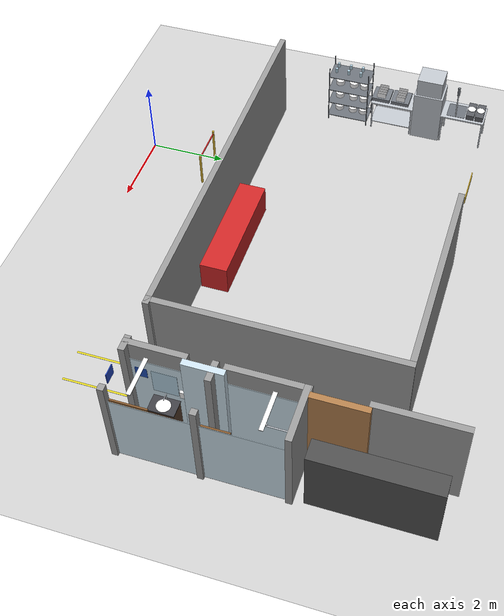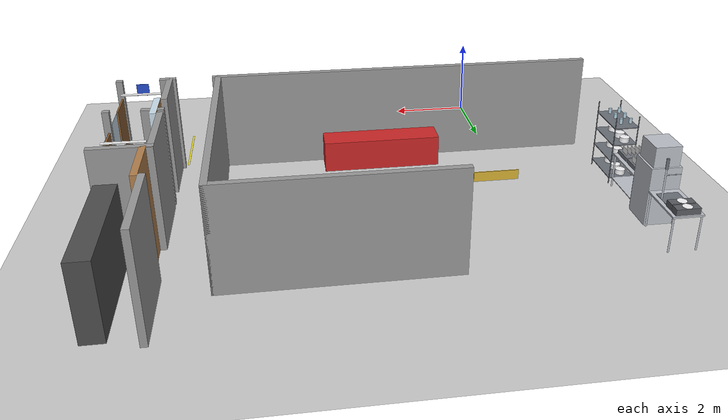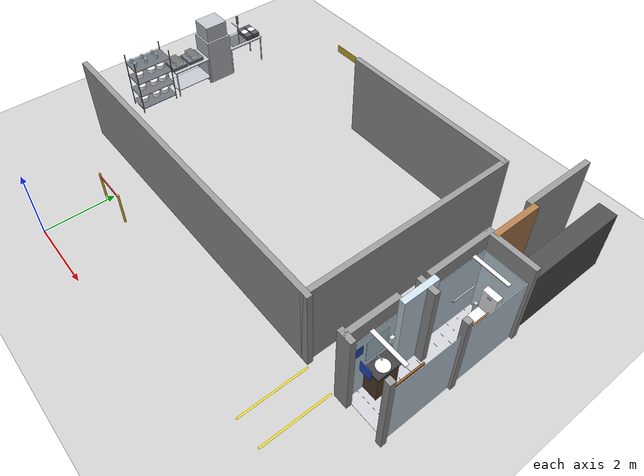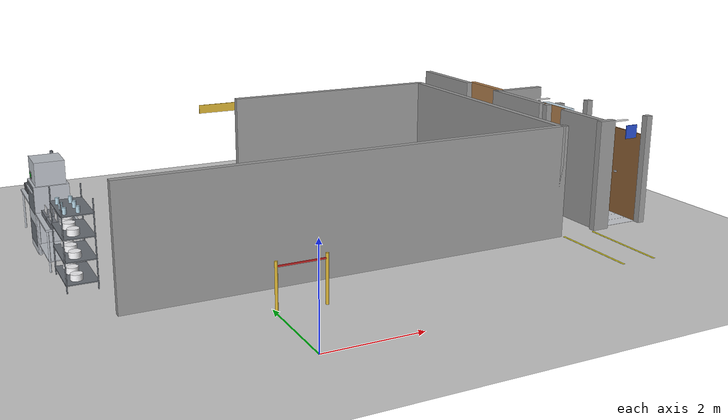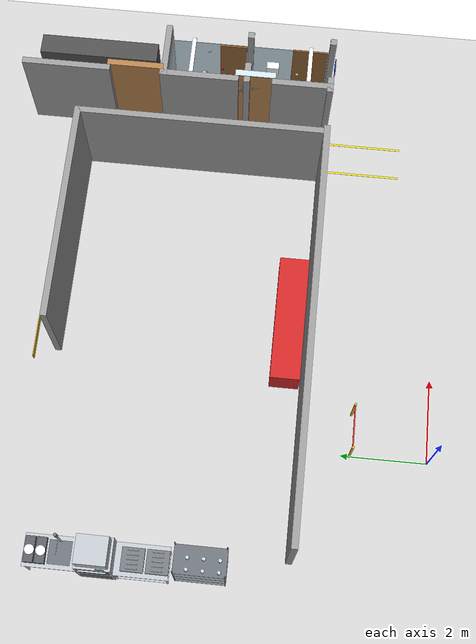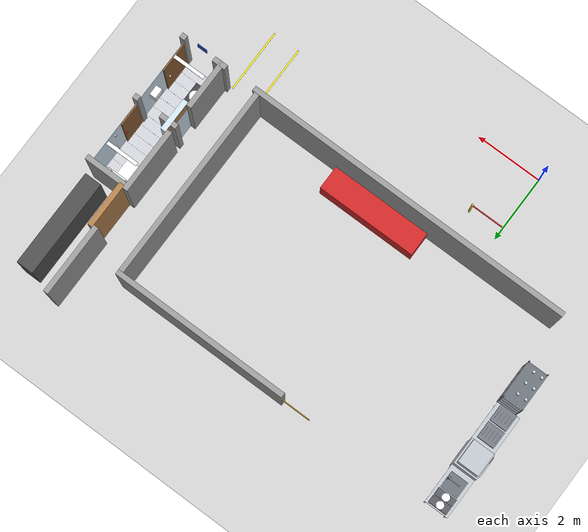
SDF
<sdf version="1.7">
 <world name="default">
  <model name="ground_plane">
   <static>1</static>
   <link name="link">
    <collision name="collision">
     <geometry><plane><normal>0 0 1</normal><size>100 100</size></plane></geometry>
     <surface><friction><ode><mu>100</mu><mu2>50</mu2></ode></friction></surface>
    </collision>
    <visual name="visual">
     <cast_shadows>0</cast_shadows>
     <geometry><plane><normal>0 0 1</normal><size>100 100</size></plane></geometry>
     <material>
      <script><uri>file://media/materials/scripts/gazebo.material</uri><name>Gazebo/Grey</name></script>
     </material>
    </visual>
   </link>
  </model>
  <model name="tunibot_layout">
   <static>1</static>
   <link name="wall_0">
    <pose>2.337 3.000 1.250 0 0 0.0000</pose>
    <collision name="wall_0_collision"><geometry><box><size>9.825 0.150 2.500</size></box></geometry></collision>
    <visual name="wall_0_visual">
     <geometry><box><size>9.825 0.150 2.500</size></box></geometry>
     <material>
      <script><uri>file://media/materials/scripts/gazebo.material</uri><name>Gazebo/Grey</name></script>
     </material>
    </visual>
   </link>
   <link name="wall_1">
    <pose>8.350 3.000 1.250 0 0 0.0000</pose>
    <collision name="wall_1_collision"><geometry><box><size>0.400 0.150 2.500</size></box></geometry></collision>
    <visual name="wall_1_visual">
     <geometry><box><size>0.400 0.150 2.500</size></box></geometry>
     <material>
      <script><uri>file://media/materials/scripts/gazebo.material</uri><name>Gazebo/Grey</name></script>
     </material>
    </visual>
   </link>
   <link name="wall_2">
    <pose>9.530 3.000 1.250 0 0 0.0000</pose>
    <collision name="wall_2_collision"><geometry><box><size>0.160 0.150 2.500</size></box></geometry></collision>
    <visual name="wall_2_visual">
     <geometry><box><size>0.160 0.150 2.500</size></box></geometry>
     <material>
      <script><uri>file://media/materials/scripts/gazebo.material</uri><name>Gazebo/Grey</name></script>
     </material>
    </visual>
   </link>
   <link name="wall_5">
    <pose>7.100 5.950 1.250 0 0 1.5708</pose>
    <collision name="wall_5_collision"><geometry><box><size>6.050 0.150 2.500</size></box></geometry></collision>
    <visual name="wall_5_visual">
     <geometry><box><size>6.050 0.150 2.500</size></box></geometry>
     <material>
      <script><uri>file://media/materials/scripts/gazebo.material</uri><name>Gazebo/Grey</name></script>
     </material>
    </visual>
   </link>
   <link name="wall_6">
    <pose>8.300 3.663 1.250 0 0 1.5708</pose>
    <collision name="wall_6_collision"><geometry><box><size>1.475 0.150 2.500</size></box></geometry></collision>
    <visual name="wall_6_visual">
     <geometry><box><size>1.475 0.150 2.500</size></box></geometry>
     <material>
      <script><uri>file://media/materials/scripts/gazebo.material</uri><name>Gazebo/Grey</name></script>
     </material>
    </visual>
   </link>
   <link name="wall_7">
    <pose>8.300 6.150 1.250 0 0 1.5708</pose>
    <collision name="wall_7_collision"><geometry><box><size>1.900 0.150 2.500</size></box></geometry></collision>
    <visual name="wall_7_visual">
     <geometry><box><size>1.900 0.150 2.500</size></box></geometry>
     <material>
      <script><uri>file://media/materials/scripts/gazebo.material</uri><name>Gazebo/Grey</name></script>
     </material>
    </visual>
   </link>
   <link name="wall_8">
    <pose>8.300 9.357 1.250 0 0 1.5708</pose>
    <collision name="wall_8_collision"><geometry><box><size>2.115 0.150 2.500</size></box></geometry></collision>
    <visual name="wall_8_visual">
     <geometry><box><size>2.115 0.150 2.500</size></box></geometry>
     <material>
      <script><uri>file://media/materials/scripts/gazebo.material</uri><name>Gazebo/Grey</name></script>
     </material>
    </visual>
   </link>
   <link name="wall_10">
    <pose>4.537 8.900 1.250 0 0 0.0000</pose>
    <collision name="wall_10_collision"><geometry><box><size>5.275 0.150 2.500</size></box></geometry></collision>
    <visual name="wall_10_visual">
     <geometry><box><size>5.275 0.150 2.500</size></box></geometry>
     <material>
      <script><uri>file://media/materials/scripts/gazebo.material</uri><name>Gazebo/Grey</name></script>
     </material>
    </visual>
   </link>
   <link name="wall_11">
    <pose>8.488 5.000 1.250 0 0 0.0000</pose>
    <collision name="wall_11_collision"><geometry><box><size>0.525 0.150 2.500</size></box></geometry></collision>
    <visual name="wall_11_visual">
     <geometry><box><size>0.525 0.150 2.500</size></box></geometry>
     <material>
      <script><uri>file://media/materials/scripts/gazebo.material</uri><name>Gazebo/Grey</name></script>
     </material>
    </visual>
   </link>
   <link name="wall_12">
    <pose>9.530 5.000 1.250 0 0 0.0000</pose>
    <collision name="wall_12_collision"><geometry><box><size>0.160 0.150 2.500</size></box></geometry></collision>
    <visual name="wall_12_visual">
     <geometry><box><size>0.160 0.150 2.500</size></box></geometry>
     <material>
      <script><uri>file://media/materials/scripts/gazebo.material</uri><name>Gazebo/Grey</name></script>
     </material>
    </visual>
   </link>
   <link name="wall_13">
    <pose>8.918 7.000 1.250 0 0 0.0000</pose>
    <collision name="wall_13_collision"><geometry><box><size>1.385 0.150 2.500</size></box></geometry></collision>
    <visual name="wall_13_visual">
     <geometry><box><size>1.385 0.150 2.500</size></box></geometry>
     <material>
      <script><uri>file://media/materials/scripts/gazebo.material</uri><name>Gazebo/Grey</name></script>
     </material>
    </visual>
   </link>
   <link name="niche_0">
    <pose>8.450 4.800 1.250 0 0 0.0000</pose>
    <collision name="niche_0_collision"><geometry><box><size>0.150 0.950 2.500</size></box></geometry></collision>
    <visual name="niche_0_visual">
     <geometry><box><size>0.150 0.950 2.500</size></box></geometry>
     <material>
      <script><uri>file://media/materials/scripts/gazebo.material</uri><name>Gazebo/Wood</name></script>
     </material>
    </visual>
   </link>
   <link name="niche_1">
    <pose>8.450 7.700 1.250 0 0 0.0000</pose>
    <collision name="niche_1_collision"><geometry><box><size>0.150 1.350 2.500</size></box></geometry></collision>
    <visual name="niche_1_visual">
     <geometry><box><size>0.150 1.350 2.500</size></box></geometry>
     <material>
      <script><uri>file://media/materials/scripts/gazebo.material</uri><name>Gazebo/Wood</name></script>
     </material>
    </visual>
   </link>
   <link name="lounge_sofa">
    <pose>3.000 3.450 0.400 0 0 0.0000</pose>
    <collision name="lounge_sofa_collision">
     <geometry><box><size>3.000 0.700 0.800</size></box></geometry>
    </collision>
    <visual name="lounge_sofa_visual">
     <geometry><box><size>3.000 0.700 0.800</size></box></geometry>
     <material>
      <script><uri>file://media/materials/scripts/gazebo.material</uri><name>Gazebo/Red</name></script>
     </material>
    </visual>
   </link>
   <link name="storage_rack">
    <pose>9.250 8.750 0.900 0 0 0.0000</pose>
    <collision name="storage_rack_collision">
     <geometry><box><size>0.500 2.900 1.800</size></box></geometry>
    </collision>
    <visual name="storage_rack_visual">
     <geometry><box><size>0.500 2.900 1.800</size></box></geometry>
     <material>
      <script><uri>file://media/materials/scripts/gazebo.material</uri><name>Gazebo/DarkGrey</name></script>
     </material>
    </visual>
   </link>
   <link name="stanchion_4">
    <pose>0.0 1.8 0.5 0 0 0</pose>
    <collision name="stanchion_4_collision">
     <geometry><cylinder><radius>0.03</radius><length>1.0</length></cylinder></geometry>
    </collision>
    <visual name="stanchion_4_visual">
     <geometry><cylinder><radius>0.03</radius><length>1.0</length></cylinder></geometry>
     <material>
      <script><uri>file://media/materials/scripts/gazebo.material</uri><name>Gazebo/Gold</name></script>
     </material>
    </visual>
   </link>
   <link name="stanchion_5">
    <pose>1.0 1.8 0.5 0 0 0</pose>
    <collision name="stanchion_5_collision">
     <geometry><cylinder><radius>0.03</radius><length>1.0</length></cylinder></geometry>
    </collision>
    <visual name="stanchion_5_visual">
     <geometry><cylinder><radius>0.03</radius><length>1.0</length></cylinder></geometry>
     <material>
      <script><uri>file://media/materials/scripts/gazebo.material</uri><name>Gazebo/Gold</name></script>
     </material>
    </visual>
   </link>
   <link name="rope_4">
    <pose>0.500 1.800 0.900 0 0 0.0000</pose>
    <visual name="rope_4_visual">
     <geometry><box><size>1.000 0.030 0.030</size></box></geometry>
     <material>
      <script><uri>file://media/materials/scripts/gazebo.material</uri><name>Gazebo/Red</name></script>
     </material>
    </visual>
   </link>
   <link name="sign_wc">
    <pose>9.000 2.910 2.200 0 0 0.0000</pose>
    <visual name="sign_wc_visual">
     <geometry><box><size>0.300 0.020 0.300</size></box></geometry>
     <material>
      <script><uri>file://media/materials/scripts/gazebo.material</uri><name>Gazebo/Blue</name></script>
     </material>
    </visual>
   </link>
   <link name="sign_vip">
    <pose>1.450 8.990 2.300 0 0 0.0000</pose>
    <visual name="sign_vip_visual">
     <geometry><box><size>0.900 0.020 0.200</size></box></geometry>
     <material>
      <script><uri>file://media/materials/scripts/gazebo.material</uri><name>Gazebo/Gold</name></script>
     </material>
    </visual>
   </link>
   <link name="lane_1_l">
    <pose>8.100 1.950 0.002 0 0 1.5708</pose>
    <visual name="lane_1_l_visual">
     <geometry><box><size>1.900 0.050 0.004</size></box></geometry>
     <material>
      <script><uri>file://media/materials/scripts/gazebo.material</uri><name>Gazebo/Yellow</name></script>
     </material>
    </visual>
   </link>
   <link name="lane_1_r">
    <pose>7.300 1.950 0.002 0 0 1.5708</pose>
    <visual name="lane_1_r_visual">
     <geometry><box><size>1.900 0.050 0.004</size></box></geometry>
     <material>
      <script><uri>file://media/materials/scripts/gazebo.material</uri><name>Gazebo/Yellow</name></script>
     </material>
    </visual>
   </link>
   <link name="k_dish">
    <collision name="k_dish_c0">
     <pose>-2.938 8.200 0.450 0 0 0</pose>
     <geometry><box><size>0.725 1.200 0.900</size></box></geometry>
    </collision>
    <collision name="k_dish_c1">
     <pose>-2.938 7.200 0.725 0 0 0.0000</pose>
     <geometry><box><size>0.725 0.800 1.450</size></box></geometry>
    </collision>
    <collision name="k_dish_c2">
     <pose>-2.938 6.200 0.450 0 0 0</pose>
     <geometry><box><size>0.725 1.200 0.900</size></box></geometry>
    </collision>
    <collision name="k_dish_c3">
     <pose>-2.888 4.925 0.900 0 0 0</pose>
     <geometry><box><size>0.625 1.150 1.800</size></box></geometry>
    </collision>
    <visual name="k_dish_v0">
     <pose>-2.938 8.200 0.880 0 0 0.0000</pose>
     <geometry><box><size>0.725 1.200 0.040</size></box></geometry>
     <material>
      <ambient>0.44 0.46 0.47 1</ambient>
      <diffuse>0.74 0.76 0.79 1</diffuse>
      <specular>0.80 0.80 0.80 1</specular>
     </material>
    </visual>
    <visual name="k_dish_v1">
     <pose>-3.260 7.640 0.430 0 0 0</pose>
     <geometry><cylinder><radius>0.020</radius><length>0.860</length></cylinder></geometry>
     <material>
      <ambient>0.44 0.46 0.47 1</ambient>
      <diffuse>0.74 0.76 0.79 1</diffuse>
      <specular>0.60 0.60 0.60 1</specular>
     </material>
    </visual>
    <visual name="k_dish_v2">
     <pose>-3.260 8.760 0.430 0 0 0</pose>
     <geometry><cylinder><radius>0.020</radius><length>0.860</length></cylinder></geometry>
     <material>
      <ambient>0.44 0.46 0.47 1</ambient>
      <diffuse>0.74 0.76 0.79 1</diffuse>
      <specular>0.60 0.60 0.60 1</specular>
     </material>
    </visual>
    <visual name="k_dish_v3">
     <pose>-2.615 7.640 0.430 0 0 0</pose>
     <geometry><cylinder><radius>0.020</radius><length>0.860</length></cylinder></geometry>
     <material>
      <ambient>0.44 0.46 0.47 1</ambient>
      <diffuse>0.74 0.76 0.79 1</diffuse>
      <specular>0.60 0.60 0.60 1</specular>
     </material>
    </visual>
    <visual name="k_dish_v4">
     <pose>-2.615 8.760 0.430 0 0 0</pose>
     <geometry><cylinder><radius>0.020</radius><length>0.860</length></cylinder></geometry>
     <material>
      <ambient>0.44 0.46 0.47 1</ambient>
      <diffuse>0.74 0.76 0.79 1</diffuse>
      <specular>0.60 0.60 0.60 1</specular>
     </material>
    </visual>
    <visual name="k_dish_v5">
     <pose>-2.938 8.000 0.883 0 0 0.0000</pose>
     <geometry><box><size>0.525 0.500 0.045</size></box></geometry>
     <material>
      <ambient>0.25 0.26 0.28 1</ambient>
      <diffuse>0.42 0.44 0.47 1</diffuse>
      <specular>0.80 0.80 0.80 1</specular>
     </material>
    </visual>
    <visual name="k_dish_v6">
     <pose>-2.695 8.000 1.275 0 0 0</pose>
     <geometry><cylinder><radius>0.018</radius><length>0.750</length></cylinder></geometry>
     <material>
      <ambient>0.44 0.46 0.47 1</ambient>
      <diffuse>0.74 0.76 0.79 1</diffuse>
      <specular>1.00 1.00 1.00 1</specular>
     </material>
    </visual>
    <visual name="k_dish_v7">
     <pose>-2.695 8.000 1.775 0 0 0</pose>
     <geometry><cylinder><radius>0.035</radius><length>0.250</length></cylinder></geometry>
     <material>
      <ambient>0.25 0.26 0.28 1</ambient>
      <diffuse>0.42 0.44 0.47 1</diffuse>
      <specular>0.15 0.15 0.15 1</specular>
     </material>
    </visual>
    <visual name="k_dish_v8">
     <pose>-2.875 8.000 1.500 0 1.5708 0</pose>
     <geometry><cylinder><radius>0.012</radius><length>0.360</length></cylinder></geometry>
     <material>
      <ambient>0.44 0.46 0.47 1</ambient>
      <diffuse>0.74 0.76 0.79 1</diffuse>
      <specular>1.00 1.00 1.00 1</specular>
     </material>
    </visual>
    <visual name="k_dish_v9">
     <pose>-2.938 8.400 0.975 0 0 0.0000</pose>
     <geometry><box><size>0.565 0.220 0.150</size></box></geometry>
     <material>
      <ambient>0.21 0.22 0.23 1</ambient>
      <diffuse>0.35 0.36 0.38 1</diffuse>
      <specular>0.15 0.15 0.15 1</specular>
     </material>
    </visual>
    <visual name="k_dish_v10">
     <pose>-2.950 8.400 1.030 0 0 0</pose>
     <geometry><cylinder><radius>0.110</radius><length>0.060</length></cylinder></geometry>
     <material>
      <ambient>0.58 0.58 0.59 1</ambient>
      <diffuse>0.97 0.97 0.98 1</diffuse>
      <specular>0.15 0.15 0.15 1</specular>
     </material>
    </visual>
    <visual name="k_dish_v11">
     <pose>-2.938 8.650 0.975 0 0 0.0000</pose>
     <geometry><box><size>0.565 0.220 0.150</size></box></geometry>
     <material>
      <ambient>0.21 0.22 0.23 1</ambient>
      <diffuse>0.35 0.36 0.38 1</diffuse>
      <specular>0.15 0.15 0.15 1</specular>
     </material>
    </visual>
    <visual name="k_dish_v12">
     <pose>-2.950 8.650 1.030 0 0 0</pose>
     <geometry><cylinder><radius>0.110</radius><length>0.060</length></cylinder></geometry>
     <material>
      <ambient>0.58 0.58 0.59 1</ambient>
      <diffuse>0.97 0.97 0.98 1</diffuse>
      <specular>0.15 0.15 0.15 1</specular>
     </material>
    </visual>
    <visual name="k_dish_v13">
     <pose>-2.938 7.200 0.725 0 0 0.0000</pose>
     <geometry><box><size>0.725 0.800 1.450</size></box></geometry>
     <material>
      <ambient>0.44 0.46 0.47 1</ambient>
      <diffuse>0.74 0.76 0.79 1</diffuse>
      <specular>0.80 0.80 0.80 1</specular>
     </material>
    </visual>
    <visual name="k_dish_v14">
     <pose>-2.938 7.200 1.700 0 0 0.0000</pose>
     <geometry><box><size>0.625 0.700 0.500</size></box></geometry>
     <material>
      <ambient>0.44 0.46 0.47 1</ambient>
      <diffuse>0.74 0.76 0.79 1</diffuse>
      <specular>0.80 0.80 0.80 1</specular>
     </material>
    </visual>
    <visual name="k_dish_v15">
     <pose>-3.303 7.200 1.135 0 0 0.0000</pose>
     <geometry><box><size>0.006 0.700 0.570</size></box></geometry>
     <material>
      <ambient>0.25 0.26 0.28 1</ambient>
      <diffuse>0.42 0.44 0.47 1</diffuse>
      <specular>0.80 0.80 0.80 1</specular>
     </material>
    </visual>
    <visual name="k_dish_v16">
     <pose>-3.323 7.200 1.320 0 0 0.0000</pose>
     <geometry><box><size>0.034 0.600 0.040</size></box></geometry>
     <material>
      <ambient>0.44 0.46 0.47 1</ambient>
      <diffuse>0.74 0.76 0.79 1</diffuse>
      <specular>1.00 1.00 1.00 1</specular>
     </material>
    </visual>
    <visual name="k_dish_v17">
     <pose>-3.303 7.200 0.375 0 0 0.0000</pose>
     <geometry><box><size>0.006 0.700 0.450</size></box></geometry>
     <material>
      <ambient>0.25 0.26 0.28 1</ambient>
      <diffuse>0.42 0.44 0.47 1</diffuse>
      <specular>0.60 0.60 0.60 1</specular>
     </material>
    </visual>
    <visual name="k_dish_v18">
     <pose>-3.302 7.000 1.675 0 0 0.0000</pose>
     <geometry><box><size>0.005 0.200 0.150</size></box></geometry>
     <material>
      <ambient>0.02 0.02 0.02 1</ambient>
      <diffuse>0.03 0.03 0.03 1</diffuse>
      <specular>0.15 0.15 0.15 1</specular>
     </material>
    </visual>
    <visual name="k_dish_v19">
     <pose>-3.306 7.000 1.675 0 0 0.0000</pose>
     <geometry><box><size>0.002 0.140 0.090</size></box></geometry>
     <material>
      <ambient>0.06 0.48 0.12 1</ambient>
      <diffuse>0.10 0.80 0.20 1</diffuse>
      <specular>0.15 0.15 0.15 1</specular>
      <emissive>0.05 0.60 0.10 1</emissive>
     </material>
    </visual>
    <visual name="k_dish_v20">
     <pose>-2.938 6.200 0.880 0 0 0.0000</pose>
     <geometry><box><size>0.725 1.200 0.040</size></box></geometry>
     <material>
      <ambient>0.44 0.46 0.47 1</ambient>
      <diffuse>0.74 0.76 0.79 1</diffuse>
      <specular>0.80 0.80 0.80 1</specular>
     </material>
    </visual>
    <visual name="k_dish_v21">
     <pose>-3.260 5.640 0.430 0 0 0</pose>
     <geometry><cylinder><radius>0.020</radius><length>0.860</length></cylinder></geometry>
     <material>
      <ambient>0.44 0.46 0.47 1</ambient>
      <diffuse>0.74 0.76 0.79 1</diffuse>
      <specular>0.60 0.60 0.60 1</specular>
     </material>
    </visual>
    <visual name="k_dish_v22">
     <pose>-3.260 6.760 0.430 0 0 0</pose>
     <geometry><cylinder><radius>0.020</radius><length>0.860</length></cylinder></geometry>
     <material>
      <ambient>0.44 0.46 0.47 1</ambient>
      <diffuse>0.74 0.76 0.79 1</diffuse>
      <specular>0.60 0.60 0.60 1</specular>
     </material>
    </visual>
    <visual name="k_dish_v23">
     <pose>-2.615 5.640 0.430 0 0 0</pose>
     <geometry><cylinder><radius>0.020</radius><length>0.860</length></cylinder></geometry>
     <material>
      <ambient>0.44 0.46 0.47 1</ambient>
      <diffuse>0.74 0.76 0.79 1</diffuse>
      <specular>0.60 0.60 0.60 1</specular>
     </material>
    </visual>
    <visual name="k_dish_v24">
     <pose>-2.615 6.760 0.430 0 0 0</pose>
     <geometry><cylinder><radius>0.020</radius><length>0.860</length></cylinder></geometry>
     <material>
      <ambient>0.44 0.46 0.47 1</ambient>
      <diffuse>0.74 0.76 0.79 1</diffuse>
      <specular>0.60 0.60 0.60 1</specular>
     </material>
    </visual>
    <visual name="k_dish_v25">
     <pose>-2.938 6.200 0.230 0 0 0.0000</pose>
     <geometry><box><size>0.685 1.160 0.020</size></box></geometry>
     <material>
      <ambient>0.44 0.46 0.47 1</ambient>
      <diffuse>0.74 0.76 0.79 1</diffuse>
      <specular>0.60 0.60 0.60 1</specular>
     </material>
    </visual>
    <visual name="k_dish_v26">
     <pose>-2.940 5.850 0.950 0 0 0.0000</pose>
     <geometry><box><size>0.520 0.500 0.100</size></box></geometry>
     <material>
      <ambient>0.27 0.28 0.30 1</ambient>
      <diffuse>0.45 0.47 0.50 1</diffuse>
      <specular>0.15 0.15 0.15 1</specular>
     </material>
    </visual>
    <visual name="k_dish_v27">
     <pose>-3.145 5.850 1.035 0 0 0.0000</pose>
     <geometry><box><size>0.010 0.240 0.230</size></box></geometry>
     <material>
      <ambient>0.58 0.58 0.59 1</ambient>
      <diffuse>0.97 0.97 0.98 1</diffuse>
      <specular>0.15 0.15 0.15 1</specular>
     </material>
    </visual>
    <visual name="k_dish_v28">
     <pose>-3.045 5.850 1.035 0 0 0.0000</pose>
     <geometry><box><size>0.010 0.240 0.230</size></box></geometry>
     <material>
      <ambient>0.58 0.58 0.59 1</ambient>
      <diffuse>0.97 0.97 0.98 1</diffuse>
      <specular>0.15 0.15 0.15 1</specular>
     </material>
    </visual>
    <visual name="k_dish_v29">
     <pose>-2.945 5.850 1.035 0 0 0.0000</pose>
     <geometry><box><size>0.010 0.240 0.230</size></box></geometry>
     <material>
      <ambient>0.58 0.58 0.59 1</ambient>
      <diffuse>0.97 0.97 0.98 1</diffuse>
      <specular>0.15 0.15 0.15 1</specular>
     </material>
    </visual>
    <visual name="k_dish_v30">
     <pose>-2.845 5.850 1.035 0 0 0.0000</pose>
     <geometry><box><size>0.010 0.240 0.230</size></box></geometry>
     <material>
      <ambient>0.58 0.58 0.59 1</ambient>
      <diffuse>0.97 0.97 0.98 1</diffuse>
      <specular>0.15 0.15 0.15 1</specular>
     </material>
    </visual>
    <visual name="k_dish_v31">
     <pose>-2.745 5.850 1.035 0 0 0.0000</pose>
     <geometry><box><size>0.010 0.240 0.230</size></box></geometry>
     <material>
      <ambient>0.58 0.58 0.59 1</ambient>
      <diffuse>0.97 0.97 0.98 1</diffuse>
      <specular>0.15 0.15 0.15 1</specular>
     </material>
    </visual>
    <visual name="k_dish_v32">
     <pose>-2.940 6.400 0.950 0 0 0.0000</pose>
     <geometry><box><size>0.520 0.500 0.100</size></box></geometry>
     <material>
      <ambient>0.27 0.28 0.30 1</ambient>
      <diffuse>0.45 0.47 0.50 1</diffuse>
      <specular>0.15 0.15 0.15 1</specular>
     </material>
    </visual>
    <visual name="k_dish_v33">
     <pose>-3.145 6.400 1.035 0 0 0.0000</pose>
     <geometry><box><size>0.010 0.240 0.230</size></box></geometry>
     <material>
      <ambient>0.58 0.58 0.59 1</ambient>
      <diffuse>0.97 0.97 0.98 1</diffuse>
      <specular>0.15 0.15 0.15 1</specular>
     </material>
    </visual>
    <visual name="k_dish_v34">
     <pose>-3.045 6.400 1.035 0 0 0.0000</pose>
     <geometry><box><size>0.010 0.240 0.230</size></box></geometry>
     <material>
      <ambient>0.58 0.58 0.59 1</ambient>
      <diffuse>0.97 0.97 0.98 1</diffuse>
      <specular>0.15 0.15 0.15 1</specular>
     </material>
    </visual>
    <visual name="k_dish_v35">
     <pose>-2.945 6.400 1.035 0 0 0.0000</pose>
     <geometry><box><size>0.010 0.240 0.230</size></box></geometry>
     <material>
      <ambient>0.58 0.58 0.59 1</ambient>
      <diffuse>0.97 0.97 0.98 1</diffuse>
      <specular>0.15 0.15 0.15 1</specular>
     </material>
    </visual>
    <visual name="k_dish_v36">
     <pose>-2.845 6.400 1.035 0 0 0.0000</pose>
     <geometry><box><size>0.010 0.240 0.230</size></box></geometry>
     <material>
      <ambient>0.58 0.58 0.59 1</ambient>
      <diffuse>0.97 0.97 0.98 1</diffuse>
      <specular>0.15 0.15 0.15 1</specular>
     </material>
    </visual>
    <visual name="k_dish_v37">
     <pose>-2.745 6.400 1.035 0 0 0.0000</pose>
     <geometry><box><size>0.010 0.240 0.230</size></box></geometry>
     <material>
      <ambient>0.58 0.58 0.59 1</ambient>
      <diffuse>0.97 0.97 0.98 1</diffuse>
      <specular>0.15 0.15 0.15 1</specular>
     </material>
    </visual>
    <visual name="k_dish_v38">
     <pose>-3.185 4.365 0.900 0 0 0</pose>
     <geometry><cylinder><radius>0.013</radius><length>1.800</length></cylinder></geometry>
     <material>
      <ambient>0.25 0.26 0.28 1</ambient>
      <diffuse>0.42 0.44 0.47 1</diffuse>
      <specular>0.50 0.50 0.50 1</specular>
     </material>
    </visual>
    <visual name="k_dish_v39">
     <pose>-3.185 5.485 0.900 0 0 0</pose>
     <geometry><cylinder><radius>0.013</radius><length>1.800</length></cylinder></geometry>
     <material>
      <ambient>0.25 0.26 0.28 1</ambient>
      <diffuse>0.42 0.44 0.47 1</diffuse>
      <specular>0.50 0.50 0.50 1</specular>
     </material>
    </visual>
    <visual name="k_dish_v40">
     <pose>-2.590 4.365 0.900 0 0 0</pose>
     <geometry><cylinder><radius>0.013</radius><length>1.800</length></cylinder></geometry>
     <material>
      <ambient>0.25 0.26 0.28 1</ambient>
      <diffuse>0.42 0.44 0.47 1</diffuse>
      <specular>0.50 0.50 0.50 1</specular>
     </material>
    </visual>
    <visual name="k_dish_v41">
     <pose>-2.590 5.485 0.900 0 0 0</pose>
     <geometry><cylinder><radius>0.013</radius><length>1.800</length></cylinder></geometry>
     <material>
      <ambient>0.25 0.26 0.28 1</ambient>
      <diffuse>0.42 0.44 0.47 1</diffuse>
      <specular>0.50 0.50 0.50 1</specular>
     </material>
    </visual>
    <visual name="k_dish_v42">
     <pose>-2.888 4.925 0.160 0 0 0.0000</pose>
     <geometry><box><size>0.625 1.150 0.020</size></box></geometry>
     <material>
      <ambient>0.25 0.26 0.28 1</ambient>
      <diffuse>0.42 0.44 0.47 1</diffuse>
      <specular>0.40 0.40 0.40 1</specular>
     </material>
    </visual>
    <visual name="k_dish_v43">
     <pose>-2.888 4.925 0.610 0 0 0.0000</pose>
     <geometry><box><size>0.625 1.150 0.020</size></box></geometry>
     <material>
      <ambient>0.25 0.26 0.28 1</ambient>
      <diffuse>0.42 0.44 0.47 1</diffuse>
      <specular>0.40 0.40 0.40 1</specular>
     </material>
    </visual>
    <visual name="k_dish_v44">
     <pose>-2.888 4.925 1.060 0 0 0.0000</pose>
     <geometry><box><size>0.625 1.150 0.020</size></box></geometry>
     <material>
      <ambient>0.25 0.26 0.28 1</ambient>
      <diffuse>0.42 0.44 0.47 1</diffuse>
      <specular>0.40 0.40 0.40 1</specular>
     </material>
    </visual>
    <visual name="k_dish_v45">
     <pose>-2.888 4.925 1.510 0 0 0.0000</pose>
     <geometry><box><size>0.625 1.150 0.020</size></box></geometry>
     <material>
      <ambient>0.25 0.26 0.28 1</ambient>
      <diffuse>0.42 0.44 0.47 1</diffuse>
      <specular>0.40 0.40 0.40 1</specular>
     </material>
    </visual>
    <visual name="k_dish_v46">
     <pose>-2.950 4.600 0.233 0 0 0</pose>
     <geometry><cylinder><radius>0.120</radius><length>0.126</length></cylinder></geometry>
     <material>
      <ambient>0.58 0.58 0.59 1</ambient>
      <diffuse>0.97 0.97 0.98 1</diffuse>
      <specular>0.60 0.60 0.60 1</specular>
     </material>
    </visual>
    <visual name="k_dish_v47">
     <pose>-2.950 5.000 0.233 0 0 0</pose>
     <geometry><cylinder><radius>0.120</radius><length>0.126</length></cylinder></geometry>
     <material>
      <ambient>0.58 0.58 0.59 1</ambient>
      <diffuse>0.97 0.97 0.98 1</diffuse>
      <specular>0.60 0.60 0.60 1</specular>
     </material>
    </visual>
    <visual name="k_dish_v48">
     <pose>-2.950 5.300 0.233 0 0 0</pose>
     <geometry><cylinder><radius>0.120</radius><length>0.126</length></cylinder></geometry>
     <material>
      <ambient>0.58 0.58 0.59 1</ambient>
      <diffuse>0.97 0.97 0.98 1</diffuse>
      <specular>0.60 0.60 0.60 1</specular>
     </material>
    </visual>
    <visual name="k_dish_v49">
     <pose>-2.950 4.600 0.683 0 0 0</pose>
     <geometry><cylinder><radius>0.120</radius><length>0.126</length></cylinder></geometry>
     <material>
      <ambient>0.58 0.58 0.59 1</ambient>
      <diffuse>0.97 0.97 0.98 1</diffuse>
      <specular>0.60 0.60 0.60 1</specular>
     </material>
    </visual>
    <visual name="k_dish_v50">
     <pose>-2.950 5.000 0.683 0 0 0</pose>
     <geometry><cylinder><radius>0.120</radius><length>0.126</length></cylinder></geometry>
     <material>
      <ambient>0.58 0.58 0.59 1</ambient>
      <diffuse>0.97 0.97 0.98 1</diffuse>
      <specular>0.60 0.60 0.60 1</specular>
     </material>
    </visual>
    <visual name="k_dish_v51">
     <pose>-2.950 5.300 0.683 0 0 0</pose>
     <geometry><cylinder><radius>0.120</radius><length>0.126</length></cylinder></geometry>
     <material>
      <ambient>0.58 0.58 0.59 1</ambient>
      <diffuse>0.97 0.97 0.98 1</diffuse>
      <specular>0.60 0.60 0.60 1</specular>
     </material>
    </visual>
    <visual name="k_dish_v52">
     <pose>-2.950 4.600 1.133 0 0 0</pose>
     <geometry><cylinder><radius>0.120</radius><length>0.126</length></cylinder></geometry>
     <material>
      <ambient>0.58 0.58 0.59 1</ambient>
      <diffuse>0.97 0.97 0.98 1</diffuse>
      <specular>0.60 0.60 0.60 1</specular>
     </material>
    </visual>
    <visual name="k_dish_v53">
     <pose>-2.950 5.000 1.133 0 0 0</pose>
     <geometry><cylinder><radius>0.120</radius><length>0.126</length></cylinder></geometry>
     <material>
      <ambient>0.58 0.58 0.59 1</ambient>
      <diffuse>0.97 0.97 0.98 1</diffuse>
      <specular>0.60 0.60 0.60 1</specular>
     </material>
    </visual>
    <visual name="k_dish_v54">
     <pose>-2.950 5.300 1.133 0 0 0</pose>
     <geometry><cylinder><radius>0.120</radius><length>0.126</length></cylinder></geometry>
     <material>
      <ambient>0.58 0.58 0.59 1</ambient>
      <diffuse>0.97 0.97 0.98 1</diffuse>
      <specular>0.60 0.60 0.60 1</specular>
     </material>
    </visual>
    <visual name="k_dish_v55">
     <pose>-3.100 4.500 1.585 0 0 0</pose>
     <geometry><cylinder><radius>0.040</radius><length>0.130</length></cylinder></geometry>
     <material>
      <ambient>0.42 0.49 0.53 1</ambient>
      <diffuse>0.70 0.82 0.88 1</diffuse>
      <specular>1.00 1.00 1.00 1</specular>
     </material>
    </visual>
    <visual name="k_dish_v56">
     <pose>-2.850 4.500 1.585 0 0 0</pose>
     <geometry><cylinder><radius>0.040</radius><length>0.130</length></cylinder></geometry>
     <material>
      <ambient>0.42 0.49 0.53 1</ambient>
      <diffuse>0.70 0.82 0.88 1</diffuse>
      <specular>1.00 1.00 1.00 1</specular>
     </material>
    </visual>
    <visual name="k_dish_v57">
     <pose>-3.100 4.850 1.585 0 0 0</pose>
     <geometry><cylinder><radius>0.040</radius><length>0.130</length></cylinder></geometry>
     <material>
      <ambient>0.42 0.49 0.53 1</ambient>
      <diffuse>0.70 0.82 0.88 1</diffuse>
      <specular>1.00 1.00 1.00 1</specular>
     </material>
    </visual>
    <visual name="k_dish_v58">
     <pose>-2.850 4.850 1.585 0 0 0</pose>
     <geometry><cylinder><radius>0.040</radius><length>0.130</length></cylinder></geometry>
     <material>
      <ambient>0.42 0.49 0.53 1</ambient>
      <diffuse>0.70 0.82 0.88 1</diffuse>
      <specular>1.00 1.00 1.00 1</specular>
     </material>
    </visual>
    <visual name="k_dish_v59">
     <pose>-3.100 5.200 1.585 0 0 0</pose>
     <geometry><cylinder><radius>0.040</radius><length>0.130</length></cylinder></geometry>
     <material>
      <ambient>0.42 0.49 0.53 1</ambient>
      <diffuse>0.70 0.82 0.88 1</diffuse>
      <specular>1.00 1.00 1.00 1</specular>
     </material>
    </visual>
    <visual name="k_dish_v60">
     <pose>-2.850 5.200 1.585 0 0 0</pose>
     <geometry><cylinder><radius>0.040</radius><length>0.130</length></cylinder></geometry>
     <material>
      <ambient>0.42 0.49 0.53 1</ambient>
      <diffuse>0.70 0.82 0.88 1</diffuse>
      <specular>1.00 1.00 1.00 1</specular>
     </material>
    </visual>
   </link>
   <link name="wc_finish">
    <visual name="wc_finish_v0">
     <pose>8.955 5.000 0.002 0 0 0.0000</pose>
     <geometry><box><size>1.160 3.850 0.004</size></box></geometry>
     <material>
      <ambient>0.48 0.49 0.50 1</ambient>
      <diffuse>0.80 0.81 0.83 1</diffuse>
      <specular>0.40 0.40 0.40 1</specular>
     </material>
    </visual>
    <visual name="wc_finish_v1">
     <pose>8.457 4.800 1.252 0 0 0.0000</pose>
     <geometry><box><size>0.155 0.970 2.505</size></box></geometry>
     <material>
      <ambient>0.48 0.53 0.56 1</ambient>
      <diffuse>0.80 0.88 0.93 1</diffuse>
      <specular>0.50 0.50 0.50 1</specular>
     </material>
    </visual>
    <visual name="wc_finish_v2">
     <pose>8.381 5.000 1.000 0 0 0.0000</pose>
     <geometry><box><size>0.012 3.850 2.000</size></box></geometry>
     <material>
      <ambient>0.48 0.53 0.56 1</ambient>
      <diffuse>0.80 0.88 0.93 1</diffuse>
      <specular>0.50 0.50 0.50 1</specular>
     </material>
    </visual>
    <visual name="wc_finish_v3">
     <pose>9.529 5.000 1.000 0 0 0.0000</pose>
     <geometry><box><size>0.012 3.850 2.000</size></box></geometry>
     <material>
      <ambient>0.48 0.53 0.56 1</ambient>
      <diffuse>0.80 0.88 0.93 1</diffuse>
      <specular>0.50 0.50 0.50 1</specular>
     </material>
    </visual>
    <visual name="wc_finish_v4">
     <pose>8.955 6.919 1.000 0 0 0.0000</pose>
     <geometry><box><size>1.160 0.012 2.000</size></box></geometry>
     <material>
      <ambient>0.48 0.53 0.56 1</ambient>
      <diffuse>0.80 0.88 0.93 1</diffuse>
      <specular>0.50 0.50 0.50 1</specular>
     </material>
    </visual>
    <visual name="wc_finish_v5">
     <pose>8.955 3.373 0.005 0 0 0.0000</pose>
     <geometry><box><size>1.160 0.003 0.001</size></box></geometry>
     <material>
      <ambient>0.36 0.36 0.37 1</ambient>
      <diffuse>0.60 0.60 0.62 1</diffuse>
      <specular>0.15 0.15 0.15 1</specular>
     </material>
    </visual>
    <visual name="wc_finish_v6">
     <pose>8.955 3.674 0.005 0 0 0.0000</pose>
     <geometry><box><size>1.160 0.003 0.001</size></box></geometry>
     <material>
      <ambient>0.36 0.36 0.37 1</ambient>
      <diffuse>0.60 0.60 0.62 1</diffuse>
      <specular>0.15 0.15 0.15 1</specular>
     </material>
    </visual>
    <visual name="wc_finish_v7">
     <pose>8.955 3.974 0.005 0 0 0.0000</pose>
     <geometry><box><size>1.160 0.003 0.001</size></box></geometry>
     <material>
      <ambient>0.36 0.36 0.37 1</ambient>
      <diffuse>0.60 0.60 0.62 1</diffuse>
      <specular>0.15 0.15 0.15 1</specular>
     </material>
    </visual>
    <visual name="wc_finish_v8">
     <pose>8.955 4.274 0.005 0 0 0.0000</pose>
     <geometry><box><size>1.160 0.003 0.001</size></box></geometry>
     <material>
      <ambient>0.36 0.36 0.37 1</ambient>
      <diffuse>0.60 0.60 0.62 1</diffuse>
      <specular>0.15 0.15 0.15 1</specular>
     </material>
    </visual>
    <visual name="wc_finish_v9">
     <pose>8.955 4.574 0.005 0 0 0.0000</pose>
     <geometry><box><size>1.160 0.003 0.001</size></box></geometry>
     <material>
      <ambient>0.36 0.36 0.37 1</ambient>
      <diffuse>0.60 0.60 0.62 1</diffuse>
      <specular>0.15 0.15 0.15 1</specular>
     </material>
    </visual>
    <visual name="wc_finish_v10">
     <pose>8.955 4.873 0.005 0 0 0.0000</pose>
     <geometry><box><size>1.160 0.003 0.001</size></box></geometry>
     <material>
      <ambient>0.36 0.36 0.37 1</ambient>
      <diffuse>0.60 0.60 0.62 1</diffuse>
      <specular>0.15 0.15 0.15 1</specular>
     </material>
    </visual>
    <visual name="wc_finish_v11">
     <pose>8.955 5.174 0.005 0 0 0.0000</pose>
     <geometry><box><size>1.160 0.003 0.001</size></box></geometry>
     <material>
      <ambient>0.36 0.36 0.37 1</ambient>
      <diffuse>0.60 0.60 0.62 1</diffuse>
      <specular>0.15 0.15 0.15 1</specular>
     </material>
    </visual>
    <visual name="wc_finish_v12">
     <pose>8.955 5.473 0.005 0 0 0.0000</pose>
     <geometry><box><size>1.160 0.003 0.001</size></box></geometry>
     <material>
      <ambient>0.36 0.36 0.37 1</ambient>
      <diffuse>0.60 0.60 0.62 1</diffuse>
      <specular>0.15 0.15 0.15 1</specular>
     </material>
    </visual>
    <visual name="wc_finish_v13">
     <pose>8.955 5.774 0.005 0 0 0.0000</pose>
     <geometry><box><size>1.160 0.003 0.001</size></box></geometry>
     <material>
      <ambient>0.36 0.36 0.37 1</ambient>
      <diffuse>0.60 0.60 0.62 1</diffuse>
      <specular>0.15 0.15 0.15 1</specular>
     </material>
    </visual>
    <visual name="wc_finish_v14">
     <pose>8.955 6.074 0.005 0 0 0.0000</pose>
     <geometry><box><size>1.160 0.003 0.001</size></box></geometry>
     <material>
      <ambient>0.36 0.36 0.37 1</ambient>
      <diffuse>0.60 0.60 0.62 1</diffuse>
      <specular>0.15 0.15 0.15 1</specular>
     </material>
    </visual>
    <visual name="wc_finish_v15">
     <pose>8.955 6.373 0.005 0 0 0.0000</pose>
     <geometry><box><size>1.160 0.003 0.001</size></box></geometry>
     <material>
      <ambient>0.36 0.36 0.37 1</ambient>
      <diffuse>0.60 0.60 0.62 1</diffuse>
      <specular>0.15 0.15 0.15 1</specular>
     </material>
    </visual>
    <visual name="wc_finish_v16">
     <pose>8.955 6.673 0.005 0 0 0.0000</pose>
     <geometry><box><size>1.160 0.003 0.001</size></box></geometry>
     <material>
      <ambient>0.36 0.36 0.37 1</ambient>
      <diffuse>0.60 0.60 0.62 1</diffuse>
      <specular>0.15 0.15 0.15 1</specular>
     </material>
    </visual>
    <visual name="wc_finish_v17">
     <pose>8.955 3.525 2.310 0 0 0.0000</pose>
     <geometry><box><size>0.960 0.100 0.020</size></box></geometry>
     <material>
      <ambient>0.57 0.57 0.57 1</ambient>
      <diffuse>0.95 0.95 0.95 1</diffuse>
      <specular>0.15 0.15 0.15 1</specular>
      <emissive>0.90 0.90 0.90 1</emissive>
     </material>
    </visual>
    <visual name="wc_finish_v18">
     <pose>8.955 6.375 2.310 0 0 0.0000</pose>
     <geometry><box><size>0.960 0.100 0.020</size></box></geometry>
     <material>
      <ambient>0.57 0.57 0.57 1</ambient>
      <diffuse>0.95 0.95 0.95 1</diffuse>
      <specular>0.15 0.15 0.15 1</specular>
      <emissive>0.90 0.90 0.90 1</emissive>
     </material>
    </visual>
   </link>
   <link name="wc_doors">
    <visual name="wc_doors_v0">
     <pose>9.495 3.525 1.025 0 0 0.0000</pose>
     <geometry><box><size>0.040 0.860 2.050</size></box></geometry>
     <material>
      <ambient>0.33 0.22 0.12 1</ambient>
      <diffuse>0.55 0.37 0.20 1</diffuse>
      <specular>0.30 0.30 0.30 1</specular>
     </material>
    </visual>
    <visual name="wc_doors_v1">
     <pose>9.455 3.805 1.020 0 0 0.0000</pose>
     <geometry><box><size>0.040 0.060 0.040</size></box></geometry>
     <material>
      <ambient>0.44 0.46 0.47 1</ambient>
      <diffuse>0.74 0.76 0.79 1</diffuse>
      <specular>1.00 1.00 1.00 1</specular>
     </material>
    </visual>
    <visual name="wc_doors_v2">
     <pose>9.495 5.425 1.000 0 0 0.0000</pose>
     <geometry><box><size>0.040 0.650 2.000</size></box></geometry>
     <material>
      <ambient>0.33 0.22 0.12 1</ambient>
      <diffuse>0.55 0.37 0.20 1</diffuse>
      <specular>0.30 0.30 0.30 1</specular>
     </material>
    </visual>
    <visual name="wc_doors_v3">
     <pose>9.455 5.700 1.005 0 0 0.0000</pose>
     <geometry><box><size>0.040 0.040 0.050</size></box></geometry>
     <material>
      <ambient>0.48 0.06 0.06 1</ambient>
      <diffuse>0.80 0.10 0.10 1</diffuse>
      <specular>0.15 0.15 0.15 1</specular>
     </material>
    </visual>
   </link>
   <link name="wc_lobby">
    <collision name="wc_lobby_c0">
     <pose>8.585 3.825 0.415 0 0 0.0000</pose>
     <geometry><box><size>0.420 0.600 0.830</size></box></geometry>
    </collision>
    <visual name="wc_lobby_v0">
     <pose>8.585 3.825 0.415 0 0 0.0000</pose>
     <geometry><box><size>0.420 0.600 0.830</size></box></geometry>
     <material>
      <ambient>0.21 0.15 0.11 1</ambient>
      <diffuse>0.35 0.25 0.18 1</diffuse>
      <specular>0.20 0.20 0.20 1</specular>
     </material>
    </visual>
    <visual name="wc_lobby_v1">
     <pose>8.595 3.825 0.845 0 0 0.0000</pose>
     <geometry><box><size>0.440 0.640 0.030</size></box></geometry>
     <material>
      <ambient>0.15 0.15 0.16 1</ambient>
      <diffuse>0.25 0.25 0.27 1</diffuse>
      <specular>0.70 0.70 0.70 1</specular>
     </material>
    </visual>
    <visual name="wc_lobby_v2">
     <pose>8.615 3.825 0.845 0 0 0</pose>
     <geometry><cylinder><radius>0.170</radius><length>0.050</length></cylinder></geometry>
     <material>
      <ambient>0.58 0.58 0.59 1</ambient>
      <diffuse>0.97 0.97 0.98 1</diffuse>
      <specular>0.80 0.80 0.80 1</specular>
     </material>
    </visual>
    <visual name="wc_lobby_v3">
     <pose>8.435 3.825 0.950 0 0 0</pose>
     <geometry><cylinder><radius>0.015</radius><length>0.180</length></cylinder></geometry>
     <material>
      <ambient>0.44 0.46 0.47 1</ambient>
      <diffuse>0.74 0.76 0.79 1</diffuse>
      <specular>1.00 1.00 1.00 1</specular>
     </material>
    </visual>
    <visual name="wc_lobby_v4">
     <pose>8.505 3.825 1.030 0 1.5708 0</pose>
     <geometry><cylinder><radius>0.012</radius><length>0.150</length></cylinder></geometry>
     <material>
      <ambient>0.44 0.46 0.47 1</ambient>
      <diffuse>0.74 0.76 0.79 1</diffuse>
      <specular>1.00 1.00 1.00 1</specular>
     </material>
    </visual>
    <visual name="wc_lobby_v5">
     <pose>8.391 3.825 1.400 0 0 0.0000</pose>
     <geometry><box><size>0.008 0.600 0.700</size></box></geometry>
     <material>
      <ambient>0.42 0.49 0.53 1</ambient>
      <diffuse>0.70 0.82 0.88 1</diffuse>
      <specular>1.00 1.00 1.00 1</specular>
      <emissive>0.10 0.12 0.14 1</emissive>
     </material>
    </visual>
    <visual name="wc_lobby_v6">
     <pose>8.421 4.225 1.200 0 0 0.0000</pose>
     <geometry><box><size>0.068 0.100 0.200</size></box></geometry>
     <material>
      <ambient>0.57 0.57 0.57 1</ambient>
      <diffuse>0.95 0.95 0.95 1</diffuse>
      <specular>0.15 0.15 0.15 1</specular>
     </material>
    </visual>
    <visual name="wc_lobby_v7">
     <pose>9.429 4.425 1.250 0 0 0.0000</pose>
     <geometry><box><size>0.188 0.300 0.300</size></box></geometry>
     <material>
      <ambient>0.57 0.57 0.57 1</ambient>
      <diffuse>0.95 0.95 0.95 1</diffuse>
      <specular>0.60 0.60 0.60 1</specular>
     </material>
    </visual>
    <visual name="wc_lobby_v8">
     <pose>8.391 3.295 1.600 0 0 0.0000</pose>
     <geometry><box><size>0.008 0.280 0.300</size></box></geometry>
     <material>
      <ambient>0.07 0.18 0.42 1</ambient>
      <diffuse>0.12 0.30 0.70 1</diffuse>
      <specular>0.15 0.15 0.15 1</specular>
     </material>
    </visual>
   </link>
   <link name="wc_compartment">
    <collision name="wc_compartment_c0">
     <pose>8.905 6.480 0.200 0 0 0.0000</pose>
     <geometry><box><size>0.380 0.550 0.400</size></box></geometry>
    </collision>
    <collision name="wc_compartment_c1">
     <pose>8.905 6.820 0.725 0 0 0.0000</pose>
     <geometry><box><size>0.420 0.190 0.650</size></box></geometry>
    </collision>
    <visual name="wc_compartment_v0">
     <pose>8.905 6.480 0.200 0 0 0.0000</pose>
     <geometry><box><size>0.380 0.550 0.400</size></box></geometry>
     <material>
      <ambient>0.58 0.58 0.59 1</ambient>
      <diffuse>0.97 0.97 0.98 1</diffuse>
      <specular>0.80 0.80 0.80 1</specular>
     </material>
    </visual>
    <visual name="wc_compartment_v1">
     <pose>8.905 6.470 0.415 0 0 0.0000</pose>
     <geometry><box><size>0.400 0.570 0.030</size></box></geometry>
     <material>
      <ambient>0.57 0.57 0.57 1</ambient>
      <diffuse>0.95 0.95 0.95 1</diffuse>
      <specular>0.50 0.50 0.50 1</specular>
     </material>
    </visual>
    <visual name="wc_compartment_v2">
     <pose>8.905 6.820 0.725 0 0 0.0000</pose>
     <geometry><box><size>0.420 0.190 0.650</size></box></geometry>
     <material>
      <ambient>0.58 0.58 0.59 1</ambient>
      <diffuse>0.97 0.97 0.98 1</diffuse>
      <specular>0.80 0.80 0.80 1</specular>
     </material>
    </visual>
    <visual name="wc_compartment_v3">
     <pose>8.905 6.723 0.950 0 0 0.0000</pose>
     <geometry><box><size>0.100 0.005 0.060</size></box></geometry>
     <material>
      <ambient>0.44 0.46 0.47 1</ambient>
      <diffuse>0.74 0.76 0.79 1</diffuse>
      <specular>1.00 1.00 1.00 1</specular>
     </material>
    </visual>
    <visual name="wc_compartment_v4">
     <pose>8.425 6.475 0.850 1.5708 0 0</pose>
     <geometry><cylinder><radius>0.016</radius><length>0.700</length></cylinder></geometry>
     <material>
      <ambient>0.44 0.46 0.47 1</ambient>
      <diffuse>0.74 0.76 0.79 1</diffuse>
      <specular>1.00 1.00 1.00 1</specular>
     </material>
    </visual>
    <visual name="wc_compartment_v5">
     <pose>8.406 6.125 0.850 0 0 0.0000</pose>
     <geometry><box><size>0.038 0.040 0.060</size></box></geometry>
     <material>
      <ambient>0.44 0.46 0.47 1</ambient>
      <diffuse>0.74 0.76 0.79 1</diffuse>
      <specular>0.15 0.15 0.15 1</specular>
     </material>
    </visual>
    <visual name="wc_compartment_v6">
     <pose>8.406 6.825 0.850 0 0 0.0000</pose>
     <geometry><box><size>0.038 0.040 0.060</size></box></geometry>
     <material>
      <ambient>0.44 0.46 0.47 1</ambient>
      <diffuse>0.74 0.76 0.79 1</diffuse>
      <specular>0.15 0.15 0.15 1</specular>
     </material>
    </visual>
    <visual name="wc_compartment_v7">
     <pose>9.455 6.175 0.700 1.5708 0 0</pose>
     <geometry><cylinder><radius>0.055</radius><length>0.100</length></cylinder></geometry>
     <material>
      <ambient>0.57 0.57 0.57 1</ambient>
      <diffuse>0.95 0.95 0.95 1</diffuse>
      <specular>0.15 0.15 0.15 1</specular>
     </material>
    </visual>
    <visual name="wc_compartment_v8">
     <pose>9.514 6.175 0.700 0 0 0.0000</pose>
     <geometry><box><size>0.018 0.140 0.040</size></box></geometry>
     <material>
      <ambient>0.44 0.46 0.47 1</ambient>
      <diffuse>0.74 0.76 0.79 1</diffuse>
      <specular>1.00 1.00 1.00 1</specular>
     </material>
    </visual>
    <visual name="wc_compartment_v9">
     <pose>8.575 6.805 0.175 0 0 0</pose>
     <geometry><cylinder><radius>0.050</radius><length>0.350</length></cylinder></geometry>
     <material>
      <ambient>0.44 0.46 0.47 1</ambient>
      <diffuse>0.74 0.76 0.79 1</diffuse>
      <specular>0.80 0.80 0.80 1</specular>
     </material>
    </visual>
    <visual name="wc_compartment_v10">
     <pose>9.355 6.745 0.150 0 0 0</pose>
     <geometry><cylinder><radius>0.100</radius><length>0.300</length></cylinder></geometry>
     <material>
      <ambient>0.44 0.46 0.47 1</ambient>
      <diffuse>0.74 0.76 0.79 1</diffuse>
      <specular>0.80 0.80 0.80 1</specular>
     </material>
    </visual>
    <visual name="wc_compartment_v11">
     <pose>9.504 6.025 1.675 0 0 0.0000</pose>
     <geometry><box><size>0.038 0.050 0.050</size></box></geometry>
     <material>
      <ambient>0.44 0.46 0.47 1</ambient>
      <diffuse>0.74 0.76 0.79 1</diffuse>
      <specular>0.15 0.15 0.15 1</specular>
     </material>
    </visual>
   </link>
  </model>
 </world>
</sdf>
